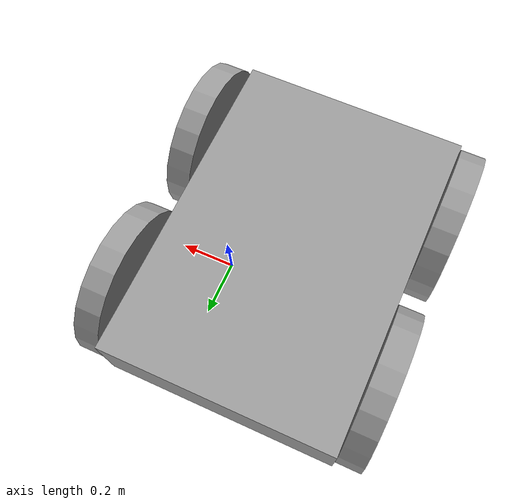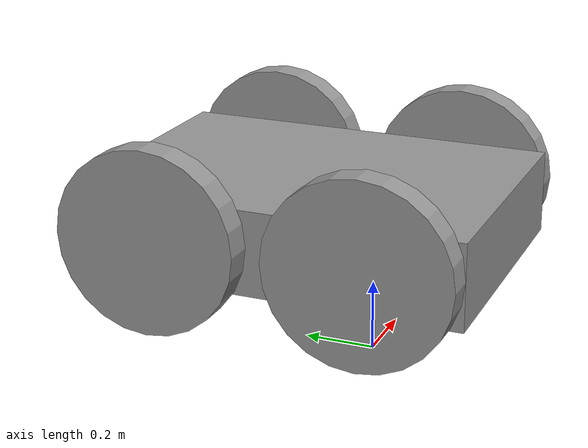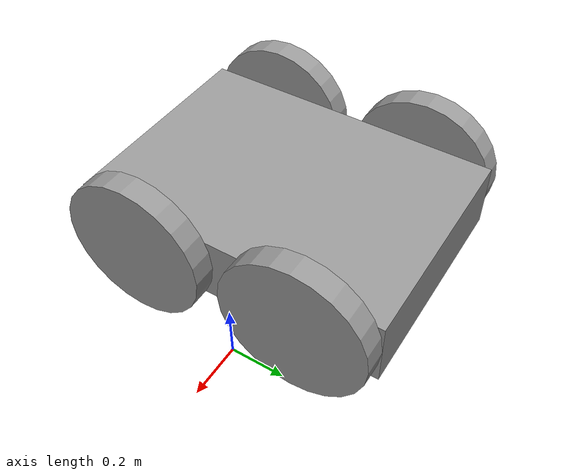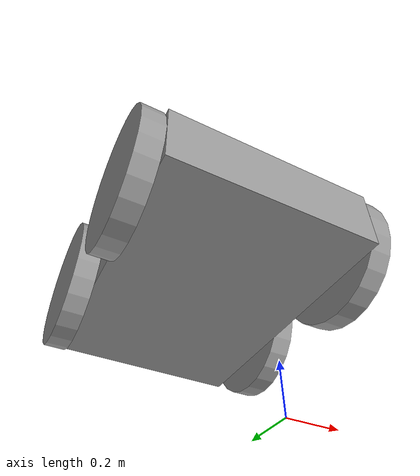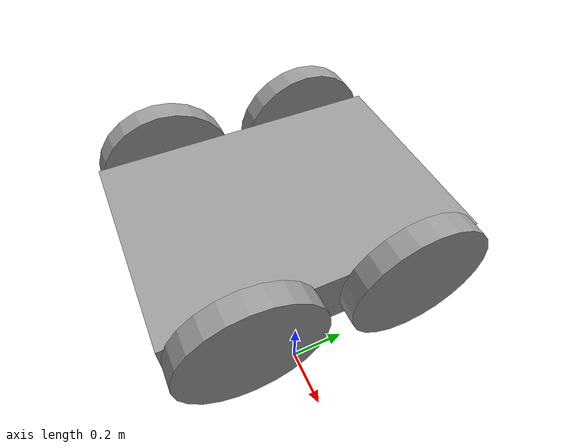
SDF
<?xml version='1.0'?>
<sdf version='1.7'>
  <model name='chassis'>
    <link name='link_0'>
      <inertial>
        <mass>0.153815</mass>
        <inertia>
          <ixx>0.01355</ixx>
          <ixy>0</ixy>
          <ixz>0</ixz>
          <iyy>0.00700775</iyy>
          <iyz>0</iyz>
          <izz>0.0193573</izz>
        </inertia>
        <pose>0 0 0 0 -0 0</pose>
      </inertial>
      <pose>-0.268186 0.058658 0.5 0 -0 0</pose>
      <self_collide>0</self_collide>
      <enable_wind>0</enable_wind>
      <kinematic>0</kinematic>
      <visual name='visual'>
        <pose>0 0 0 0 -0 0</pose>
        <geometry>
          <box>
            <size>0.707029 1.00513 0.216393</size>
          </box>
        </geometry>
        <material>
          <lighting>1</lighting>
          <script>
            <uri>file://media/materials/scripts/gazebo.material</uri>
            <name>Gazebo/Grey</name>
          </script>
          <shader type='pixel'/>
          <emissive>0 0 0 1</emissive>
        </material>
        <transparency>0</transparency>
        <cast_shadows>1</cast_shadows>
      </visual>
      <collision name='collision'>
        <laser_retro>0</laser_retro>
        <max_contacts>10</max_contacts>
        <pose>0 0 0 0 -0 0</pose>
        <geometry>
          <box>
            <size>0.707029 1.00513 0.216393</size>
          </box>
        </geometry>
        <surface>
          <friction>
            <ode>
              <mu>1</mu>
              <mu2>1</mu2>
              <fdir1>0 0 0</fdir1>
              <slip1>0</slip1>
              <slip2>0</slip2>
            </ode>
            <torsional>
              <coefficient>1</coefficient>
              <patch_radius>0</patch_radius>
              <surface_radius>0</surface_radius>
              <use_patch_radius>1</use_patch_radius>
              <ode>
                <slip>0</slip>
              </ode>
            </torsional>
          </friction>
          <bounce>
            <restitution_coefficient>0</restitution_coefficient>
            <threshold>1e+06</threshold>
          </bounce>
          <contact>
            <collide_without_contact>0</collide_without_contact>
            <collide_without_contact_bitmask>1</collide_without_contact_bitmask>
            <collide_bitmask>1</collide_bitmask>
            <ode>
              <soft_cfm>0</soft_cfm>
              <soft_erp>0.2</soft_erp>
              <kp>1e+13</kp>
              <kd>1</kd>
              <max_vel>0.01</max_vel>
              <min_depth>0</min_depth>
            </ode>
            <bullet>
              <split_impulse>1</split_impulse>
              <split_impulse_penetration_threshold>-0.01</split_impulse_penetration_threshold>
              <soft_cfm>0</soft_cfm>
              <soft_erp>0.2</soft_erp>
              <kp>1e+13</kp>
              <kd>1</kd>
            </bullet>
          </contact>
        </surface>
      </collision>
    </link>
    <link name='link_1'>
      <inertial>
        <mass>0.0164306</mass>
        <inertia>
          <ixx>0.000232416</ixx>
          <ixy>0</ixy>
          <ixz>0</ixz>
          <iyy>0.000232416</iyy>
          <iyz>0</iyz>
          <izz>0.000449452</izz>
        </inertia>
        <pose>0 0 0 0 -0 0</pose>
      </inertial>
      <pose>-0.660097 -0.210006 0.516104 3.14159 -1.56685 3.14159</pose>
      <self_collide>0</self_collide>
      <enable_wind>0</enable_wind>
      <kinematic>0</kinematic>
      <visual name='visual'>
        <pose>0 0 0 0 -0 0</pose>
        <geometry>
          <cylinder>
            <radius>0.2339</radius>
            <length>0.0749434</length>
          </cylinder>
        </geometry>
        <material>
          <lighting>1</lighting>
          <script>
            <uri>file://media/materials/scripts/gazebo.material</uri>
            <name>Gazebo/Grey</name>
          </script>
          <shader type='pixel'/>
          <emissive>0 0 0 1</emissive>
        </material>
        <transparency>0</transparency>
        <cast_shadows>1</cast_shadows>
      </visual>
      <collision name='collision'>
        <laser_retro>0</laser_retro>
        <max_contacts>10</max_contacts>
        <pose>0 0 0 0 -0 0</pose>
        <geometry>
          <cylinder>
            <radius>0.2339</radius>
            <length>0.074943</length>
          </cylinder>
        </geometry>
        <surface>
          <friction>
            <ode>
              <mu>1</mu>
              <mu2>1</mu2>
              <fdir1>0 0 0</fdir1>
              <slip1>0</slip1>
              <slip2>0</slip2>
            </ode>
            <torsional>
              <coefficient>1</coefficient>
              <patch_radius>0</patch_radius>
              <surface_radius>0</surface_radius>
              <use_patch_radius>1</use_patch_radius>
              <ode>
                <slip>0</slip>
              </ode>
            </torsional>
          </friction>
          <bounce>
            <restitution_coefficient>0</restitution_coefficient>
            <threshold>1e+06</threshold>
          </bounce>
          <contact>
            <collide_without_contact>0</collide_without_contact>
            <collide_without_contact_bitmask>1</collide_without_contact_bitmask>
            <collide_bitmask>1</collide_bitmask>
            <ode>
              <soft_cfm>0</soft_cfm>
              <soft_erp>0.2</soft_erp>
              <kp>1e+13</kp>
              <kd>1</kd>
              <max_vel>0.01</max_vel>
              <min_depth>0</min_depth>
            </ode>
            <bullet>
              <split_impulse>1</split_impulse>
              <split_impulse_penetration_threshold>-0.01</split_impulse_penetration_threshold>
              <soft_cfm>0</soft_cfm>
              <soft_erp>0.2</soft_erp>
              <kp>1e+13</kp>
              <kd>1</kd>
            </bullet>
          </contact>
        </surface>
      </collision>
    </link>
    <link name='link_1_clone'>
      <inertial>
        <mass>0.0164306</mass>
        <inertia>
          <ixx>0.000232416</ixx>
          <ixy>0</ixy>
          <ixz>0</ixz>
          <iyy>0.000232416</iyy>
          <iyz>0</iyz>
          <izz>0.000449452</izz>
        </inertia>
        <pose>0 0 0 0 -0 0</pose>
      </inertial>
      <pose>0.123724 -0.210006 0.515902 3.14159 -1.56685 3.14159</pose>
      <self_collide>0</self_collide>
      <enable_wind>0</enable_wind>
      <kinematic>0</kinematic>
      <visual name='visual'>
        <pose>0 0 0 0 -0 0</pose>
        <geometry>
          <cylinder>
            <radius>0.2339</radius>
            <length>0.0749434</length>
          </cylinder>
        </geometry>
        <material>
          <lighting>1</lighting>
          <script>
            <uri>file://media/materials/scripts/gazebo.material</uri>
            <name>Gazebo/Grey</name>
          </script>
          <shader type='pixel'/>
          <emissive>0 0 0 1</emissive>
        </material>
        <transparency>0</transparency>
        <cast_shadows>1</cast_shadows>
      </visual>
      <collision name='collision'>
        <laser_retro>0</laser_retro>
        <max_contacts>10</max_contacts>
        <pose>0 0 0 0 -0 0</pose>
        <geometry>
          <cylinder>
            <radius>0.2339</radius>
            <length>0.074943</length>
          </cylinder>
        </geometry>
        <surface>
          <friction>
            <ode>
              <mu>1</mu>
              <mu2>1</mu2>
              <fdir1>0 0 0</fdir1>
              <slip1>0</slip1>
              <slip2>0</slip2>
            </ode>
            <torsional>
              <coefficient>1</coefficient>
              <patch_radius>0</patch_radius>
              <surface_radius>0</surface_radius>
              <use_patch_radius>1</use_patch_radius>
              <ode>
                <slip>0</slip>
              </ode>
            </torsional>
          </friction>
          <bounce>
            <restitution_coefficient>0</restitution_coefficient>
            <threshold>1e+06</threshold>
          </bounce>
          <contact>
            <collide_without_contact>0</collide_without_contact>
            <collide_without_contact_bitmask>1</collide_without_contact_bitmask>
            <collide_bitmask>1</collide_bitmask>
            <ode>
              <soft_cfm>0</soft_cfm>
              <soft_erp>0.2</soft_erp>
              <kp>1e+13</kp>
              <kd>1</kd>
              <max_vel>0.01</max_vel>
              <min_depth>0</min_depth>
            </ode>
            <bullet>
              <split_impulse>1</split_impulse>
              <split_impulse_penetration_threshold>-0.01</split_impulse_penetration_threshold>
              <soft_cfm>0</soft_cfm>
              <soft_erp>0.2</soft_erp>
              <kp>1e+13</kp>
              <kd>1</kd>
            </bullet>
          </contact>
        </surface>
      </collision>
    </link>
    <link name='link_1_clone_clone'>
      <inertial>
        <mass>0.0164306</mass>
        <inertia>
          <ixx>0.000232416</ixx>
          <ixy>0</ixy>
          <ixz>0</ixz>
          <iyy>0.000232416</iyy>
          <iyz>0</iyz>
          <izz>0.000449452</izz>
        </inertia>
        <pose>0 0 0 0 -0 0</pose>
      </inertial>
      <pose>0.123724 0.327323 0.515902 3.14159 -1.56685 3.14159</pose>
      <self_collide>0</self_collide>
      <enable_wind>0</enable_wind>
      <kinematic>0</kinematic>
      <visual name='visual'>
        <pose>0 0 0 0 -0 0</pose>
        <geometry>
          <cylinder>
            <radius>0.2339</radius>
            <length>0.0749434</length>
          </cylinder>
        </geometry>
        <material>
          <lighting>1</lighting>
          <script>
            <uri>file://media/materials/scripts/gazebo.material</uri>
            <name>Gazebo/Grey</name>
          </script>
          <shader type='pixel'/>
          <emissive>0 0 0 1</emissive>
        </material>
        <transparency>0</transparency>
        <cast_shadows>1</cast_shadows>
      </visual>
      <collision name='collision'>
        <laser_retro>0</laser_retro>
        <max_contacts>10</max_contacts>
        <pose>0 0 0 0 -0 0</pose>
        <geometry>
          <cylinder>
            <radius>0.2339</radius>
            <length>0.074943</length>
          </cylinder>
        </geometry>
        <surface>
          <friction>
            <ode>
              <mu>1</mu>
              <mu2>1</mu2>
              <fdir1>0 0 0</fdir1>
              <slip1>0</slip1>
              <slip2>0</slip2>
            </ode>
            <torsional>
              <coefficient>1</coefficient>
              <patch_radius>0</patch_radius>
              <surface_radius>0</surface_radius>
              <use_patch_radius>1</use_patch_radius>
              <ode>
                <slip>0</slip>
              </ode>
            </torsional>
          </friction>
          <bounce>
            <restitution_coefficient>0</restitution_coefficient>
            <threshold>1e+06</threshold>
          </bounce>
          <contact>
            <collide_without_contact>0</collide_without_contact>
            <collide_without_contact_bitmask>1</collide_without_contact_bitmask>
            <collide_bitmask>1</collide_bitmask>
            <ode>
              <soft_cfm>0</soft_cfm>
              <soft_erp>0.2</soft_erp>
              <kp>1e+13</kp>
              <kd>1</kd>
              <max_vel>0.01</max_vel>
              <min_depth>0</min_depth>
            </ode>
            <bullet>
              <split_impulse>1</split_impulse>
              <split_impulse_penetration_threshold>-0.01</split_impulse_penetration_threshold>
              <soft_cfm>0</soft_cfm>
              <soft_erp>0.2</soft_erp>
              <kp>1e+13</kp>
              <kd>1</kd>
            </bullet>
          </contact>
        </surface>
      </collision>
    </link>
    <link name='link_1_clone_clone_0'>
      <inertial>
        <mass>0.0164306</mass>
        <inertia>
          <ixx>0.00023242</ixx>
          <ixy>0</ixy>
          <ixz>0</ixz>
          <iyy>0.00023242</iyy>
          <iyz>0</iyz>
          <izz>0.00044945</izz>
        </inertia>
        <pose>0 0 0 0 -0 0</pose>
      </inertial>
      <pose>-0.660097 0.327323 0.515902 3.14159 -1.56685 3.14159</pose>
      <self_collide>0</self_collide>
      <enable_wind>0</enable_wind>
      <kinematic>0</kinematic>
      <gravity>1</gravity>
      <visual name='visual'>
        <pose>0 0 0 0 -0 0</pose>
        <geometry>
          <cylinder>
            <radius>0.2339</radius>
            <length>0.0749434</length>
          </cylinder>
        </geometry>
        <material>
          <lighting>1</lighting>
          <script>
            <uri>file://media/materials/scripts/gazebo.material</uri>
            <name>Gazebo/Grey</name>
          </script>
          <shader type='pixel'>
            <normal_map>__default__</normal_map>
          </shader>
          <emissive>0 0 0 1</emissive>
        </material>
        <transparency>0</transparency>
        <cast_shadows>1</cast_shadows>
      </visual>
      <collision name='collision'>
        <laser_retro>0</laser_retro>
        <max_contacts>10</max_contacts>
        <pose>0 0 0 0 -0 0</pose>
        <geometry>
          <cylinder>
            <radius>0.2339</radius>
            <length>0.074943</length>
          </cylinder>
        </geometry>
        <surface>
          <friction>
            <ode>
              <mu>1</mu>
              <mu2>1</mu2>
              <fdir1>0 0 0</fdir1>
              <slip1>0</slip1>
              <slip2>0</slip2>
            </ode>
            <torsional>
              <coefficient>1</coefficient>
              <patch_radius>0</patch_radius>
              <surface_radius>0</surface_radius>
              <use_patch_radius>1</use_patch_radius>
              <ode>
                <slip>0</slip>
              </ode>
            </torsional>
          </friction>
          <bounce>
            <restitution_coefficient>0</restitution_coefficient>
            <threshold>1e+06</threshold>
          </bounce>
          <contact>
            <collide_without_contact>0</collide_without_contact>
            <collide_without_contact_bitmask>1</collide_without_contact_bitmask>
            <collide_bitmask>1</collide_bitmask>
            <ode>
              <soft_cfm>0</soft_cfm>
              <soft_erp>0.2</soft_erp>
              <kp>1e+13</kp>
              <kd>1</kd>
              <max_vel>0.01</max_vel>
              <min_depth>0</min_depth>
            </ode>
            <bullet>
              <split_impulse>1</split_impulse>
              <split_impulse_penetration_threshold>-0.01</split_impulse_penetration_threshold>
              <soft_cfm>0</soft_cfm>
              <soft_erp>0.2</soft_erp>
              <kp>1e+13</kp>
              <kd>1</kd>
            </bullet>
          </contact>
        </surface>
      </collision>
    </link>
    <joint name='link_0_JOINT_0' type='revolute'>
      <parent>link_0</parent>
      <child>link_1</child>
      <pose>0 0 0 -0.03 0 0</pose>
      <axis>
        <xyz>0 0 1</xyz>
        <limit>
          <lower>-1.79769e+308</lower>
          <upper>1.79769e+308</upper>
          <effort>-1</effort>
          <velocity>-1</velocity>
        </limit>
        <dynamics>
          <spring_reference>0</spring_reference>
          <spring_stiffness>0</spring_stiffness>
          <damping>0</damping>
          <friction>0</friction>
        </dynamics>
      </axis>
      <physics>
        <ode>
          <limit>
            <cfm>0</cfm>
            <erp>0.2</erp>
          </limit>
          <suspension>
            <cfm>0</cfm>
            <erp>0.2</erp>
          </suspension>
        </ode>
      </physics>
    </joint>
    <joint name='link_0_JOINT_1' type='revolute'>
      <parent>link_0</parent>
      <child>link_1_clone</child>
      <pose>0 0 0 0 -0 0</pose>
      <axis>
        <xyz>0 0 1</xyz>
        <limit>
          <lower>-1.79769e+308</lower>
          <upper>1.79769e+308</upper>
          <effort>-1</effort>
          <velocity>-1</velocity>
        </limit>
        <dynamics>
          <spring_reference>0</spring_reference>
          <spring_stiffness>0</spring_stiffness>
          <damping>0</damping>
          <friction>0</friction>
        </dynamics>
      </axis>
      <physics>
        <ode>
          <limit>
            <cfm>0</cfm>
            <erp>0.2</erp>
          </limit>
          <suspension>
            <cfm>0</cfm>
            <erp>0.2</erp>
          </suspension>
        </ode>
      </physics>
    </joint>
    <joint name='link_0_JOINT_3' type='revolute'>
      <parent>link_0</parent>
      <child>link_1_clone_clone</child>
      <pose>0 0 0 0 -0 0</pose>
      <axis>
        <xyz>0 0 1</xyz>
        <limit>
          <lower>-1.79769e+308</lower>
          <upper>1.79769e+308</upper>
          <effort>-1</effort>
          <velocity>-1</velocity>
        </limit>
        <dynamics>
          <spring_reference>0</spring_reference>
          <spring_stiffness>0</spring_stiffness>
          <damping>0</damping>
          <friction>0</friction>
        </dynamics>
      </axis>
      <physics>
        <ode>
          <limit>
            <cfm>0</cfm>
            <erp>0.2</erp>
          </limit>
          <suspension>
            <cfm>0</cfm>
            <erp>0.2</erp>
          </suspension>
        </ode>
      </physics>
    </joint>
    <joint name='link_0_JOINT_4' type='revolute'>
      <parent>link_0</parent>
      <child>link_1_clone_clone_0</child>
      <pose>0 0 0 0 -0 0</pose>
      <axis>
        <xyz>0 0 1</xyz>
        <limit>
          <lower>-1.79769e+308</lower>
          <upper>1.79769e+308</upper>
          <effort>-1</effort>
          <velocity>-1</velocity>
        </limit>
        <dynamics>
          <spring_reference>0</spring_reference>
          <spring_stiffness>0</spring_stiffness>
          <damping>0</damping>
          <friction>0</friction>
        </dynamics>
      </axis>
      <physics>
        <ode>
          <limit>
            <cfm>0</cfm>
            <erp>0.2</erp>
          </limit>
          <suspension>
            <cfm>0</cfm>
            <erp>0.2</erp>
          </suspension>
        </ode>
      </physics>
    </joint>
    <static>0</static>
    <allow_auto_disable>1</allow_auto_disable>
  </model>
</sdf>
